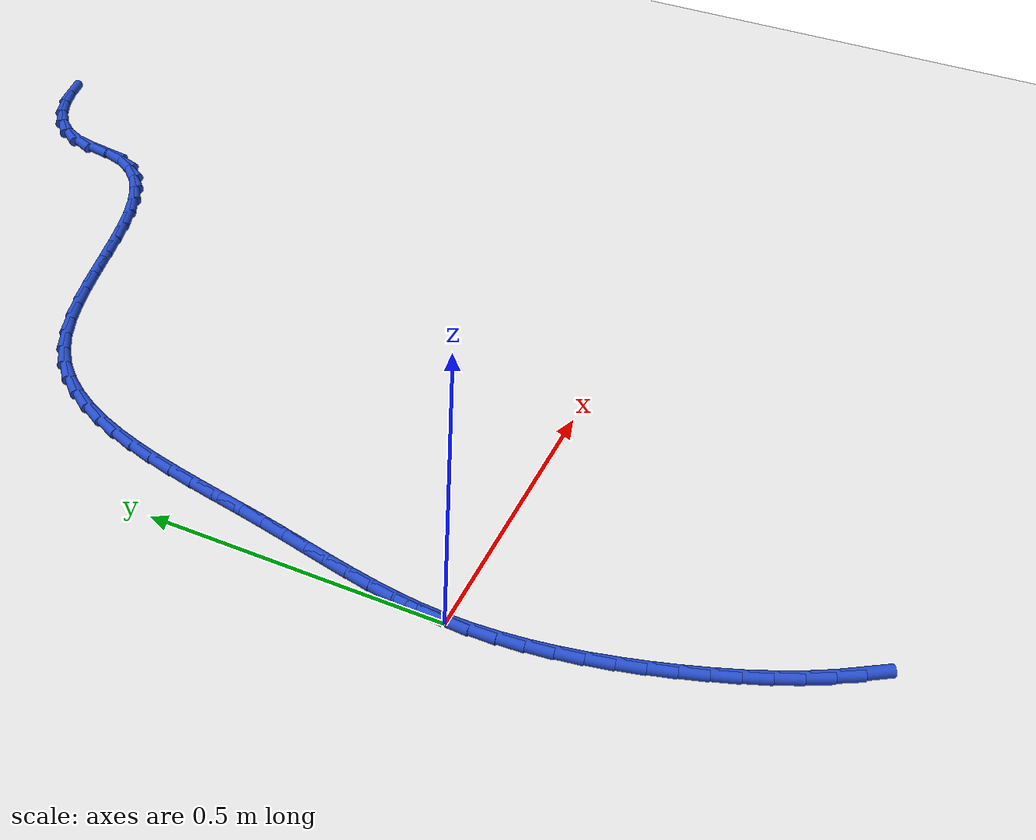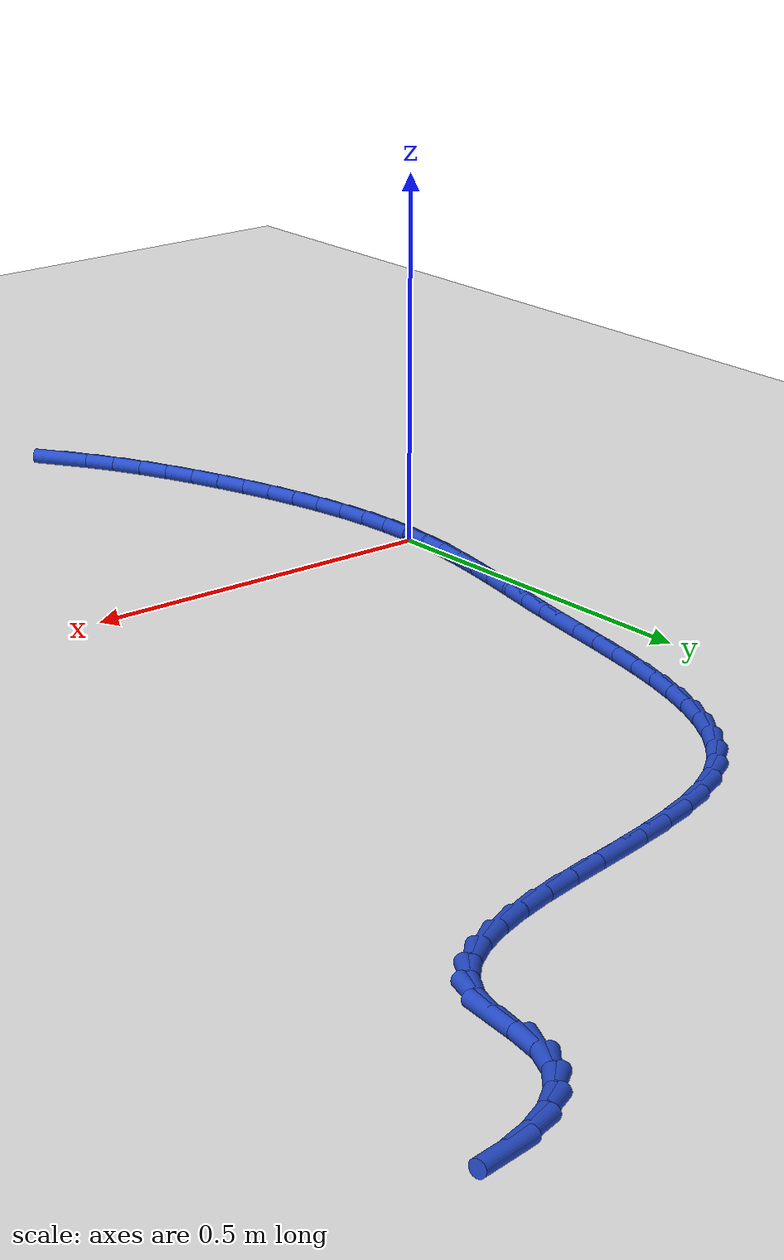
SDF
<sdf version="1.6">
 <world name="default">
  <model name="ground_plane">
   <static>1</static>
   <link name="link">
    <collision name="collision">
     <geometry><plane><normal>0 0 1</normal><size>100 100</size></plane></geometry>
     <surface><friction><ode><mu>100</mu><mu2>50</mu2></ode></friction></surface>
    </collision>
    <visual name="visual">
     <cast_shadows>0</cast_shadows>
     <geometry><plane><normal>0 0 1</normal><size>100 100</size></plane></geometry>
     <material>
      <script><uri>file://media/materials/scripts/gazebo.material</uri><name>Gazebo/WhiteGlow</name></script>
     </material>
    </visual>
   </link>
  </model>
  <model name="line">
   <link name="link_0">
    <pose>1.734723475976807e-18 9.71445146547012e-17 0.01 0 1.57 1.5118925620704657</pose>
    <collision name="collision">
     <geometry><cylinder><radius>0.01</radius><length>0.08</length></cylinder></geometry>
    </collision>
    <visual name="visual">
     <material>
      <script><name>Gazebo/Blue</name><uri>file://media/materials/scripts/gazebo.material</uri></script>
     </material>
     <geometry><cylinder><radius>0.01</radius><length>0.08</length></cylinder></geometry>
    </visual>
   </link>
   <link name="link_1">
    <pose>0.002440601395666703 0.04138577684380926 0.01 0 1.57 1.4592444443070107</pose>
    <collision name="collision">
     <geometry><cylinder><radius>0.01</radius><length>0.08</length></cylinder></geometry>
    </collision>
    <visual name="visual">
     <material>
      <script><name>Gazebo/Blue</name><uri>file://media/materials/scripts/gazebo.material</uri></script>
     </material>
     <geometry><cylinder><radius>0.01</radius><length>0.08</length></cylinder></geometry>
    </visual>
   </link>
   <link name="link_2">
    <pose>0.007056655684240985 0.08259432629118585 0.01 0 1.57 1.4165258033613233</pose>
    <collision name="collision">
     <geometry><cylinder><radius>0.01</radius><length>0.08</length></cylinder></geometry>
    </collision>
    <visual name="visual">
     <material>
      <script><name>Gazebo/Blue</name><uri>file://media/materials/scripts/gazebo.material</uri></script>
     </material>
     <geometry><cylinder><radius>0.01</radius><length>0.08</length></cylinder></geometry>
    </visual>
   </link>
   <link name="link_3">
    <pose>0.013461327831780188 0.12378030337710803 0.01 0 1.57 1.3840618345977151</pose>
    <collision name="collision">
     <geometry><cylinder><radius>0.01</radius><length>0.08</length></cylinder></geometry>
    </collision>
    <visual name="visual">
     <material>
      <script><name>Gazebo/Blue</name><uri>file://media/materials/scripts/gazebo.material</uri></script>
     </material>
     <geometry><cylinder><radius>0.01</radius><length>0.08</length></cylinder></geometry>
    </visual>
   </link>
   <link name="link_4">
    <pose>0.021267782804341676 0.16509836313655407 0.01 0 1.57 1.3618621066158823</pose>
    <collision name="collision">
     <geometry><cylinder><radius>0.01</radius><length>0.08</length></cylinder></geometry>
    </collision>
    <visual name="visual">
     <material>
      <script><name>Gazebo/Blue</name><uri>file://media/materials/scripts/gazebo.material</uri></script>
     </material>
     <geometry><cylinder><radius>0.01</radius><length>0.08</length></cylinder></geometry>
    </visual>
   </link>
   <link name="link_5">
    <pose>0.0300891855679828 0.206703160604502 0.01 0 1.57 1.3497281308252556</pose>
    <collision name="collision">
     <geometry><cylinder><radius>0.01</radius><length>0.08</length></cylinder></geometry>
    </collision>
    <visual name="visual">
     <material>
      <script><name>Gazebo/Blue</name><uri>file://media/materials/scripts/gazebo.material</uri></script>
     </material>
     <geometry><cylinder><radius>0.01</radius><length>0.08</length></cylinder></geometry>
    </visual>
   </link>
   <link name="link_6">
    <pose>0.03953870108876091 0.24874935081593003 0.01 0 1.57 1.3473336510708016</pose>
    <collision name="collision">
     <geometry><cylinder><radius>0.01</radius><length>0.08</length></cylinder></geometry>
    </collision>
    <visual name="visual">
     <material>
      <script><name>Gazebo/Blue</name><uri>file://media/materials/scripts/gazebo.material</uri></script>
     </material>
     <geometry><cylinder><radius>0.01</radius><length>0.08</length></cylinder></geometry>
    </visual>
   </link>
   <link name="link_7">
    <pose>0.049229494332733374 0.2913915888058165 0.01 0 1.57 1.354272642317846</pose>
    <collision name="collision">
     <geometry><cylinder><radius>0.01</radius><length>0.08</length></cylinder></geometry>
    </collision>
    <visual name="visual">
     <material>
      <script><name>Gazebo/Blue</name><uri>file://media/materials/scripts/gazebo.material</uri></script>
     </material>
     <geometry><cylinder><radius>0.01</radius><length>0.08</length></cylinder></geometry>
    </visual>
   </link>
   <link name="link_8">
    <pose>0.058774730265957524 0.33478452960913946 0.01 0 1.57 1.3681830134863464</pose>
    <collision name="collision">
     <geometry><cylinder><radius>0.01</radius><length>0.08</length></cylinder></geometry>
    </collision>
    <visual name="visual">
     <material>
      <script><name>Gazebo/Blue</name><uri>file://media/materials/scripts/gazebo.material</uri></script>
     </material>
     <geometry><cylinder><radius>0.01</radius><length>0.08</length></cylinder></geometry>
    </visual>
   </link>
   <link name="link_9">
    <pose>0.06786421708791056 0.3790302108305726 0.01 0 1.57 1.376412043853948</pose>
    <collision name="collision">
     <geometry><cylinder><radius>0.01</radius><length>0.08</length></cylinder></geometry>
    </collision>
    <visual name="visual">
     <material>
      <script><name>Gazebo/Blue</name><uri>file://media/materials/scripts/gazebo.material</uri></script>
     </material>
     <geometry><cylinder><radius>0.01</radius><length>0.08</length></cylinder></geometry>
    </visual>
   </link>
   <link name="link_10">
    <pose>0.07669436747697209 0.42388287386798773 0.01 0 1.57 1.3742911222290082</pose>
    <collision name="collision">
     <geometry><cylinder><radius>0.01</radius><length>0.08</length></cylinder></geometry>
    </collision>
    <visual name="visual">
     <material>
      <script><name>Gazebo/Blue</name><uri>file://media/materials/scripts/gazebo.material</uri></script>
     </material>
     <geometry><cylinder><radius>0.01</radius><length>0.08</length></cylinder></geometry>
    </visual>
   </link>
   <link name="link_11">
    <pose>0.08566718723445407 0.46895561547628856 0.01 0 1.57 1.361929538733073</pose>
    <collision name="collision">
     <geometry><cylinder><radius>0.01</radius><length>0.08</length></cylinder></geometry>
    </collision>
    <visual name="visual">
     <material>
      <script><name>Gazebo/Blue</name><uri>file://media/materials/scripts/gazebo.material</uri></script>
     </material>
     <geometry><cylinder><radius>0.01</radius><length>0.08</length></cylinder></geometry>
    </visual>
   </link>
   <link name="link_12">
    <pose>0.09518527146455512 0.5138611278397183 0.01 0 1.57 1.339055843428847</pose>
    <collision name="collision">
     <geometry><cylinder><radius>0.01</radius><length>0.08</length></cylinder></geometry>
    </collision>
    <visual name="visual">
     <material>
      <script><name>Gazebo/Blue</name><uri>file://media/materials/scripts/gazebo.material</uri></script>
     </material>
     <geometry><cylinder><radius>0.01</radius><length>0.08</length></cylinder></geometry>
    </visual>
   </link>
   <link name="link_13">
    <pose>0.10565121527147389 0.5582121031425203 0.01 0 1.57 1.3050258217924686</pose>
    <collision name="collision">
     <geometry><cylinder><radius>0.01</radius><length>0.08</length></cylinder></geometry>
    </collision>
    <visual name="visual">
     <material>
      <script><name>Gazebo/Blue</name><uri>file://media/materials/scripts/gazebo.material</uri></script>
     </material>
     <geometry><cylinder><radius>0.01</radius><length>0.08</length></cylinder></geometry>
    </visual>
   </link>
   <link name="link_14">
    <pose>0.117467613759409 0.6016212335689382 0.01 0 1.57 1.2588561935308358</pose>
    <collision name="collision">
     <geometry><cylinder><radius>0.01</radius><length>0.08</length></cylinder></geometry>
    </collision>
    <visual name="visual">
     <material>
      <script><name>Gazebo/Blue</name><uri>file://media/materials/scripts/gazebo.material</uri></script>
     </material>
     <geometry><cylinder><radius>0.01</radius><length>0.08</length></cylinder></geometry>
    </visual>
   </link>
   <link name="link_15">
    <pose>0.13103706203255916 0.6437012113032147 0.01 0 1.57 1.1992989600634782</pose>
    <collision name="collision">
     <geometry><cylinder><radius>0.01</radius><length>0.08</length></cylinder></geometry>
    </collision>
    <visual name="visual">
     <material>
      <script><name>Gazebo/Blue</name><uri>file://media/materials/scripts/gazebo.material</uri></script>
     </material>
     <geometry><cylinder><radius>0.01</radius><length>0.08</length></cylinder></geometry>
    </visual>
   </link>
   <link name="link_16">
    <pose>0.14676215519512287 0.6840647285295934 0.01 0 1.57 1.125005807170459</pose>
    <collision name="collision">
     <geometry><cylinder><radius>0.01</radius><length>0.08</length></cylinder></geometry>
    </collision>
    <visual name="visual">
     <material>
      <script><name>Gazebo/Blue</name><uri>file://media/materials/scripts/gazebo.material</uri></script>
     </material>
     <geometry><cylinder><radius>0.01</radius><length>0.08</length></cylinder></geometry>
    </visual>
   </link>
   <link name="link_17">
    <pose>0.1650454883512989 0.7223244774323179 0.01 0 1.57 1.0348503538678946</pose>
    <collision name="collision">
     <geometry><cylinder><radius>0.01</radius><length>0.08</length></cylinder></geometry>
    </collision>
    <visual name="visual">
     <material>
      <script><name>Gazebo/Blue</name><uri>file://media/materials/scripts/gazebo.material</uri></script>
     </material>
     <geometry><cylinder><radius>0.01</radius><length>0.08</length></cylinder></geometry>
    </visual>
   </link>
   <link name="link_18">
    <pose>0.18628965660528587 0.7580931501956311 0.01 0 1.57 0.9284660616330688</pose>
    <collision name="collision">
     <geometry><cylinder><radius>0.01</radius><length>0.08</length></cylinder></geometry>
    </collision>
    <visual name="visual">
     <material>
      <script><name>Gazebo/Blue</name><uri>file://media/materials/scripts/gazebo.material</uri></script>
     </material>
     <geometry><cylinder><radius>0.01</radius><length>0.08</length></cylinder></geometry>
    </visual>
   </link>
   <link name="link_19">
    <pose>0.21089725506128232 0.7909834390037763 0.01 0 1.57 0.806963985858658</pose>
    <collision name="collision">
     <geometry><cylinder><radius>0.01</radius><length>0.08</length></cylinder></geometry>
    </collision>
    <visual name="visual">
     <material>
      <script><name>Gazebo/Blue</name><uri>file://media/materials/scripts/gazebo.material</uri></script>
     </material>
     <geometry><cylinder><radius>0.01</radius><length>0.08</length></cylinder></geometry>
    </visual>
   </link>
   <link name="link_20">
    <pose>0.23927087882348702 0.820608036040997 0.01 0 1.57 0.673574430281032</pose>
    <collision name="collision">
     <geometry><cylinder><radius>0.01</radius><length>0.08</length></cylinder></geometry>
    </collision>
    <visual name="visual">
     <material>
      <script><name>Gazebo/Blue</name><uri>file://media/materials/scripts/gazebo.material</uri></script>
     </material>
     <geometry><cylinder><radius>0.01</radius><length>0.08</length></cylinder></geometry>
    </visual>
   </link>
   <link name="link_21">
    <pose>0.2718131229960985 0.8465796334915365 0.01 0 1.57 0.5373420039086666</pose>
    <collision name="collision">
     <geometry><cylinder><radius>0.01</radius><length>0.08</length></cylinder></geometry>
    </collision>
    <visual name="visual">
     <material>
      <script><name>Gazebo/Blue</name><uri>file://media/materials/scripts/gazebo.material</uri></script>
     </material>
     <geometry><cylinder><radius>0.01</radius><length>0.08</length></cylinder></geometry>
    </visual>
   </link>
   <link name="link_22">
    <pose>0.30880189917166323 0.8686183714034724 0.01 0 1.57 0.4254899743307072</pose>
    <collision name="collision">
     <geometry><cylinder><radius>0.01</radius><length>0.08</length></cylinder></geometry>
    </collision>
    <visual name="visual">
     <material>
      <script><name>Gazebo/Blue</name><uri>file://media/materials/scripts/gazebo.material</uri></script>
     </material>
     <geometry><cylinder><radius>0.01</radius><length>0.08</length></cylinder></geometry>
    </visual>
   </link>
   <link name="link_23">
    <pose>0.34969583162918266 0.8871504228082355 0.01 0 1.57 0.34399910165057807</pose>
    <collision name="collision">
     <geometry><cylinder><radius>0.01</radius><length>0.08</length></cylinder></geometry>
    </collision>
    <visual name="visual">
     <material>
      <script><name>Gazebo/Blue</name><uri>file://media/materials/scripts/gazebo.material</uri></script>
     </material>
     <geometry><cylinder><radius>0.01</radius><length>0.08</length></cylinder></geometry>
    </visual>
   </link>
   <link name="link_24">
    <pose>0.3936228348866499 0.9028869547745484 0.01 0 1.57 0.2880064697864589</pose>
    <collision name="collision">
     <geometry><cylinder><radius>0.01</radius><length>0.08</length></cylinder></geometry>
    </collision>
    <visual name="visual">
     <material>
      <script><name>Gazebo/Blue</name><uri>file://media/materials/scripts/gazebo.material</uri></script>
     </material>
     <geometry><cylinder><radius>0.01</radius><length>0.08</length></cylinder></geometry>
    </visual>
   </link>
   <link name="link_25">
    <pose>0.43970990349803835 0.9165399271637614 0.01 0 1.57 0.25365809883870455</pose>
    <collision name="collision">
     <geometry><cylinder><radius>0.01</radius><length>0.08</length></cylinder></geometry>
    </collision>
    <visual name="visual">
     <material>
      <script><name>Gazebo/Blue</name><uri>file://media/materials/scripts/gazebo.material</uri></script>
     </material>
     <geometry><cylinder><radius>0.01</radius><length>0.08</length></cylinder></geometry>
    </visual>
   </link>
   <link name="link_26">
    <pose>0.48708403201732026 0.928821299837224 0.01 0 1.57 0.23856151467213263</pose>
    <collision name="collision">
     <geometry><cylinder><radius>0.01</radius><length>0.08</length></cylinder></geometry>
    </collision>
    <visual name="visual">
     <material>
      <script><name>Gazebo/Blue</name><uri>file://media/materials/scripts/gazebo.material</uri></script>
     </material>
     <geometry><cylinder><radius>0.01</radius><length>0.08</length></cylinder></geometry>
    </visual>
   </link>
   <link name="link_27">
    <pose>0.5348722149984687 0.9404430326562868 0.01 0 1.57 0.24182917553623962</pose>
    <collision name="collision">
     <geometry><cylinder><radius>0.01</radius><length>0.08</length></cylinder></geometry>
    </collision>
    <visual name="visual">
     <material>
      <script><name>Gazebo/Blue</name><uri>file://media/materials/scripts/gazebo.material</uri></script>
     </material>
     <geometry><cylinder><radius>0.01</radius><length>0.08</length></cylinder></geometry>
    </visual>
   </link>
   <link name="link_28">
    <pose>0.5822014469954565 0.9521170854822995 0.01 0 1.57 0.26409817928467055</pose>
    <collision name="collision">
     <geometry><cylinder><radius>0.01</radius><length>0.08</length></cylinder></geometry>
    </collision>
    <visual name="visual">
     <material>
      <script><name>Gazebo/Blue</name><uri>file://media/materials/scripts/gazebo.material</uri></script>
     </material>
     <geometry><cylinder><radius>0.01</radius><length>0.08</length></cylinder></geometry>
    </visual>
   </link>
   <link name="link_29">
    <pose>0.6281987225622563 0.9645554181766117 0.01 0 1.57 0.3076515844914948</pose>
    <collision name="collision">
     <geometry><cylinder><radius>0.01</radius><length>0.08</length></cylinder></geometry>
    </collision>
    <visual name="visual">
     <material>
      <script><name>Gazebo/Blue</name><uri>file://media/materials/scripts/gazebo.material</uri></script>
     </material>
     <geometry><cylinder><radius>0.01</radius><length>0.08</length></cylinder></geometry>
    </visual>
   </link>
   <link name="link_30">
    <pose>0.6719910362528413 0.9784699906005743 0.01 0 1.57 0.3766263251963658</pose>
    <collision name="collision">
     <geometry><cylinder><radius>0.01</radius><length>0.08</length></cylinder></geometry>
    </collision>
    <visual name="visual">
     <material>
      <script><name>Gazebo/Blue</name><uri>file://media/materials/scripts/gazebo.material</uri></script>
     </material>
     <geometry><cylinder><radius>0.01</radius><length>0.08</length></cylinder></geometry>
    </visual>
   </link>
   <link name="link_31">
    <pose>0.7127053826211839 0.9945727626155364 0.01 0 1.57 0.4770748107611785</pose>
    <collision name="collision">
     <geometry><cylinder><radius>0.01</radius><length>0.08</length></cylinder></geometry>
    </collision>
    <visual name="visual">
     <material>
      <script><name>Gazebo/Blue</name><uri>file://media/materials/scripts/gazebo.material</uri></script>
     </material>
     <geometry><cylinder><radius>0.01</radius><length>0.08</length></cylinder></geometry>
    </visual>
   </link>
   <link name="link_32">
    <pose>0.749468756221257 1.0135756940828482 0.01 0 1.57 0.6161157883373141</pose>
    <collision name="collision">
     <geometry><cylinder><radius>0.01</radius><length>0.08</length></cylinder></geometry>
    </collision>
    <visual name="visual">
     <material>
      <script><name>Gazebo/Blue</name><uri>file://media/materials/scripts/gazebo.material</uri></script>
     </material>
     <geometry><cylinder><radius>0.01</radius><length>0.08</length></cylinder></geometry>
    </visual>
   </link>
   <link name="link_33">
    <pose>0.7814081516070338 1.03619074486386 0.01 0 1.57 0.7984981667726718</pose>
    <collision name="collision">
     <geometry><cylinder><radius>0.01</radius><length>0.08</length></cylinder></geometry>
    </collision>
    <visual name="visual">
     <material>
      <script><name>Gazebo/Blue</name><uri>file://media/materials/scripts/gazebo.material</uri></script>
     </material>
     <geometry><cylinder><radius>0.01</radius><length>0.08</length></cylinder></geometry>
    </visual>
   </link>
   <link name="link_34">
    <pose>0.8076505633324866 1.063129874819922 0.01 0 1.57 1.0192457979860359</pose>
    <collision name="collision">
     <geometry><cylinder><radius>0.01</radius><length>0.08</length></cylinder></geometry>
    </collision>
    <visual name="visual">
     <material>
      <script><name>Gazebo/Blue</name><uri>file://media/materials/scripts/gazebo.material</uri></script>
     </material>
     <geometry><cylinder><radius>0.01</radius><length>0.08</length></cylinder></geometry>
    </visual>
   </link>
   <link name="link_35">
    <pose>0.8273229859515889 1.095105043812384 0.01 0 1.57 1.2571919003249752</pose>
    <collision name="collision">
     <geometry><cylinder><radius>0.01</radius><length>0.08</length></cylinder></geometry>
    </collision>
    <visual name="visual">
     <material>
      <script><name>Gazebo/Blue</name><uri>file://media/materials/scripts/gazebo.material</uri></script>
     </material>
     <geometry><cylinder><radius>0.01</radius><length>0.08</length></cylinder></geometry>
    </visual>
   </link>
   <link name="link_36">
    <pose>0.8395559789018703 1.132825524364342 0.01 0 1.57 1.421813403696601</pose>
    <collision name="collision">
     <geometry><cylinder><radius>0.01</radius><length>0.08</length></cylinder></geometry>
    </collision>
    <visual name="visual">
     <material>
      <script><name>Gazebo/Blue</name><uri>file://media/materials/scripts/gazebo.material</uri></script>
     </material>
     <geometry><cylinder><radius>0.01</radius><length>0.08</length></cylinder></geometry>
    </visual>
   </link>
   <link name="link_37">
    <pose>0.8459113496168702 1.1751678262624599 0.01 0 1.57 1.3623700531676382</pose>
    <collision name="collision">
     <geometry><cylinder><radius>0.01</radius><length>0.08</length></cylinder></geometry>
    </collision>
    <visual name="visual">
     <material>
      <script><name>Gazebo/Blue</name><uri>file://media/materials/scripts/gazebo.material</uri></script>
     </material>
     <geometry><cylinder><radius>0.01</radius><length>0.08</length></cylinder></geometry>
    </visual>
   </link>
   <link name="link_38">
    <pose>0.8545534360814249 1.2160291851540015 0.01 0 1.57 1.131603148136454</pose>
    <collision name="collision">
     <geometry><cylinder><radius>0.01</radius><length>0.08</length></cylinder></geometry>
    </collision>
    <visual name="visual">
     <material>
      <script><name>Gazebo/Blue</name><uri>file://media/materials/scripts/gazebo.material</uri></script>
     </material>
     <geometry><cylinder><radius>0.01</radius><length>0.08</length></cylinder></geometry>
    </visual>
   </link>
   <link name="link_39">
    <pose>0.8710465919229426 1.2511362992995012 0.01 0 1.57 0.8850576071320237</pose>
    <collision name="collision">
     <geometry><cylinder><radius>0.01</radius><length>0.08</length></cylinder></geometry>
    </collision>
    <visual name="visual">
     <material>
      <script><name>Gazebo/Blue</name><uri>file://media/materials/scripts/gazebo.material</uri></script>
     </material>
     <geometry><cylinder><radius>0.01</radius><length>0.08</length></cylinder></geometry>
    </visual>
   </link>
   <link name="link_40">
    <pose>0.8950436015195598 1.280465426609109 0.01 0 1.57 0.6626870986300039</pose>
    <collision name="collision">
     <geometry><cylinder><radius>0.01</radius><length>0.08</length></cylinder></geometry>
    </collision>
    <visual name="visual">
     <material>
      <script><name>Gazebo/Blue</name><uri>file://media/materials/scripts/gazebo.material</uri></script>
     </material>
     <geometry><cylinder><radius>0.01</radius><length>0.08</length></cylinder></geometry>
    </visual>
   </link>
   <link name="link_41">
    <pose>0.925673317251399 1.3043694559997367 0.01 0 1.57 0.47753500186646297</pose>
    <collision name="collision">
     <geometry><cylinder><radius>0.01</radius><length>0.08</length></cylinder></geometry>
    </collision>
    <visual name="visual">
     <material>
      <script><name>Gazebo/Blue</name><uri>file://media/materials/scripts/gazebo.material</uri></script>
     </material>
     <geometry><cylinder><radius>0.01</radius><length>0.08</length></cylinder></geometry>
    </visual>
   </link>
   <link name="link_42">
    <pose>0.9620645914985838 1.323201276388297 0.01 0 1.57 0.3294035977487588</pose>
    <collision name="collision">
     <geometry><cylinder><radius>0.01</radius><length>0.08</length></cylinder></geometry>
    </collision>
    <visual name="visual">
     <material>
      <script><name>Gazebo/Blue</name><uri>file://media/materials/scripts/gazebo.material</uri></script>
     </material>
     <geometry><cylinder><radius>0.01</radius><length>0.08</length></cylinder></geometry>
    </visual>
   </link>
   <link name="link_43">
    <pose>1.0033462766412369 1.3373137766917018 0.01 0 1.57 0.2119104578036931</pose>
    <collision name="collision">
     <geometry><cylinder><radius>0.01</radius><length>0.08</length></cylinder></geometry>
    </collision>
    <visual name="visual">
     <material>
      <script><name>Gazebo/Blue</name><uri>file://media/materials/scripts/gazebo.material</uri></script>
     </material>
     <geometry><cylinder><radius>0.01</radius><length>0.08</length></cylinder></geometry>
    </visual>
   </link>
   <link name="link_166">
    <pose>0.16991960519560484 -0.5676738096538015 0.01 0 1.57 -0.9884686983020372</pose>
    <collision name="collision">
     <geometry><cylinder><radius>0.01</radius><length>0.08</length></cylinder></geometry>
    </collision>
    <visual name="visual">
     <material>
      <script><name>Gazebo/Blue</name><uri>file://media/materials/scripts/gazebo.material</uri></script>
     </material>
     <geometry><cylinder><radius>0.01</radius><length>0.08</length></cylinder></geometry>
    </visual>
   </link>
   <link name="link_167">
    <pose>0.14651554343750017 -0.532132349526816 0.01 0 1.57 -1.051543830394066</pose>
    <collision name="collision">
     <geometry><cylinder><radius>0.01</radius><length>0.08</length></cylinder></geometry>
    </collision>
    <visual name="visual">
     <material>
      <script><name>Gazebo/Blue</name><uri>file://media/materials/scripts/gazebo.material</uri></script>
     </material>
     <geometry><cylinder><radius>0.01</radius><length>0.08</length></cylinder></geometry>
    </visual>
   </link>
   <link name="link_168">
    <pose>0.12527666874517188 -0.4949734960705649 0.01 0 1.57 -1.1069231596220137</pose>
    <collision name="collision">
     <geometry><cylinder><radius>0.01</radius><length>0.08</length></cylinder></geometry>
    </collision>
    <visual name="visual">
     <material>
      <script><name>Gazebo/Blue</name><uri>file://media/materials/scripts/gazebo.material</uri></script>
     </material>
     <geometry><cylinder><radius>0.01</radius><length>0.08</length></cylinder></geometry>
    </visual>
   </link>
   <link name="link_169">
    <pose>0.10600391550558397 -0.45644971542583657 0.01 0 1.57 -1.1549005052067651</pose>
    <collision name="collision">
     <geometry><cylinder><radius>0.01</radius><length>0.08</length></cylinder></geometry>
    </collision>
    <visual name="visual">
     <material>
      <script><name>Gazebo/Blue</name><uri>file://media/materials/scripts/gazebo.material</uri></script>
     </material>
     <geometry><cylinder><radius>0.01</radius><length>0.08</length></cylinder></geometry>
    </visual>
   </link>
   <link name="link_170">
    <pose>0.08849821810570004 -0.4168134737334188 0.01 0 1.57 -1.1958537950884434</pose>
    <collision name="collision">
     <geometry><cylinder><radius>0.01</radius><length>0.08</length></cylinder></geometry>
    </collision>
    <visual name="visual">
     <material>
      <script><name>Gazebo/Blue</name><uri>file://media/materials/scripts/gazebo.material</uri></script>
     </material>
     <geometry><cylinder><radius>0.01</radius><length>0.08</length></cylinder></geometry>
    </visual>
   </link>
   <link name="link_171">
    <pose>0.07256051093248468 -0.37631723713410153 0.01 0 1.57 -1.2301791505889448</pose>
    <collision name="collision">
     <geometry><cylinder><radius>0.01</radius><length>0.08</length></cylinder></geometry>
    </collision>
    <visual name="visual">
     <material>
      <script><name>Gazebo/Blue</name><uri>file://media/materials/scripts/gazebo.material</uri></script>
     </material>
     <geometry><cylinder><radius>0.01</radius><length>0.08</length></cylinder></geometry>
    </visual>
   </link>
   <link name="link_172">
    <pose>0.0579920012800327 -0.3352133499154381 0.01 0 1.57 -1.2606049784882765</pose>
    <collision name="collision">
     <geometry><cylinder><radius>0.01</radius><length>0.08</length></cylinder></geometry>
    </collision>
    <visual name="visual">
     <material>
      <script><name>Gazebo/Blue</name><uri>file://media/materials/scripts/gazebo.material</uri></script>
     </material>
     <geometry><cylinder><radius>0.01</radius><length>0.08</length></cylinder></geometry>
    </visual>
   </link>
   <link name="link_173">
    <pose>0.04468910695413572 -0.2937116448018409 0.01 0 1.57 -1.2932714612790621</pose>
    <collision name="collision">
     <geometry><cylinder><radius>0.01</radius><length>0.08</length></cylinder></geometry>
    </collision>
    <visual name="visual">
     <material>
      <script><name>Gazebo/Blue</name><uri>file://media/materials/scripts/gazebo.material</uri></script>
     </material>
     <geometry><cylinder><radius>0.01</radius><length>0.08</length></cylinder></geometry>
    </visual>
   </link>
   <link name="link_174">
    <pose>0.0327828551238558 -0.25191720126534645 0.01 0 1.57 -1.3293256345807252</pose>
    <collision name="collision">
     <geometry><cylinder><radius>0.01</radius><length>0.08</length></cylinder></geometry>
    </collision>
    <visual name="visual">
     <material>
      <script><name>Gazebo/Blue</name><uri>file://media/materials/scripts/gazebo.material</uri></script>
     </material>
     <geometry><cylinder><radius>0.01</radius><length>0.08</length></cylinder></geometry>
    </visual>
   </link>
   <link name="link_175">
    <pose>0.022439766565083414 -0.20991925085657015 0.01 0 1.57 -1.3690444634420835</pose>
    <collision name="collision">
     <geometry><cylinder><radius>0.01</radius><length>0.08</length></cylinder></geometry>
    </collision>
    <visual name="visual">
     <material>
      <script><name>Gazebo/Blue</name><uri>file://media/materials/scripts/gazebo.material</uri></script>
     </material>
     <geometry><cylinder><radius>0.01</radius><length>0.08</length></cylinder></geometry>
    </visual>
   </link>
   <link name="link_176">
    <pose>0.013826362053708846 -0.16780702512612655 0.01 0 1.57 -1.4127141326717412</pose>
    <collision name="collision">
     <geometry><cylinder><radius>0.01</radius><length>0.08</length></cylinder></geometry>
    </collision>
    <visual name="visual">
     <material>
      <script><name>Gazebo/Blue</name><uri>file://media/materials/scripts/gazebo.material</uri></script>
     </material>
     <geometry><cylinder><radius>0.01</radius><length>0.08</length></cylinder></geometry>
    </visual>
   </link>
   <link name="link_177">
    <pose>0.007109162365622896 -0.1256697556246329 0.01 0 1.57 -1.4606160403580954</pose>
    <collision name="collision">
     <geometry><cylinder><radius>0.01</radius><length>0.08</length></cylinder></geometry>
    </collision>
    <visual name="visual">
     <material>
      <script><name>Gazebo/Blue</name><uri>file://media/materials/scripts/gazebo.material</uri></script>
     </material>
     <geometry><cylinder><radius>0.01</radius><length>0.08</length></cylinder></geometry>
    </visual>
   </link>
   <link name="link_178">
    <pose>0.0024546882767158083 -0.08359667390270357 0.01 0 1.57 -1.5130065650193334</pose>
    <collision name="collision">
     <geometry><cylinder><radius>0.01</radius><length>0.08</length></cylinder></geometry>
    </collision>
    <visual name="visual">
     <material>
      <script><name>Gazebo/Blue</name><uri>file://media/materials/scripts/gazebo.material</uri></script>
     </material>
     <geometry><cylinder><radius>0.01</radius><length>0.08</length></cylinder></geometry>
    </visual>
   </link>
   <link name="link_179">
    <pose>2.946056287803263e-05 -0.04167701151095418 0.01 0 1.57 -1.5700894489045911</pose>
    <collision name="collision">
     <geometry><cylinder><radius>0.01</radius><length>0.08</length></cylinder></geometry>
    </collision>
    <visual name="visual">
     <material>
      <script><name>Gazebo/Blue</name><uri>file://media/materials/scripts/gazebo.material</uri></script>
     </material>
     <geometry><cylinder><radius>0.01</radius><length>0.08</length></cylinder></geometry>
    </visual>
   </link>
   <link name="link_180">
    <pose>1.9081958235744878e-17 -8.326672684688674e-17 0.01 0 1.57 1.5096121900894466</pose>
    <collision name="collision">
     <geometry><cylinder><radius>0.01</radius><length>0.08</length></cylinder></geometry>
    </collision>
    <visual name="visual">
     <material>
      <script><name>Gazebo/Blue</name><uri>file://media/materials/scripts/gazebo.material</uri></script>
     </material>
     <geometry><cylinder><radius>0.01</radius><length>0.08</length></cylinder></geometry>
    </visual>
   </link>
   <link name="link_181">
    <pose>0.002532827363972213 0.04134512907954332 0.01 0 1.57 1.509612190089446</pose>
    <collision name="collision">
     <geometry><cylinder><radius>0.01</radius><length>0.08</length></cylinder></geometry>
    </collision>
    <visual name="visual">
     <material>
      <script><name>Gazebo/Blue</name><uri>file://media/materials/scripts/gazebo.material</uri></script>
     </material>
     <geometry><cylinder><radius>0.01</radius><length>0.08</length></cylinder></geometry>
    </visual>
   </link>
  </model>
 </world>
</sdf>
